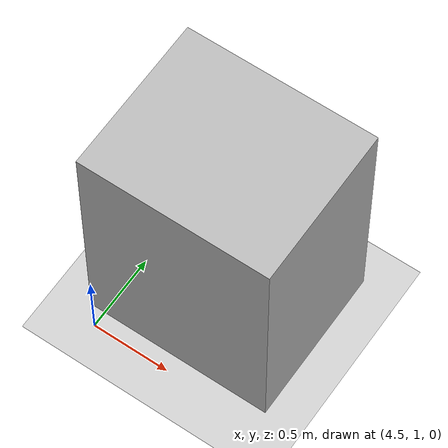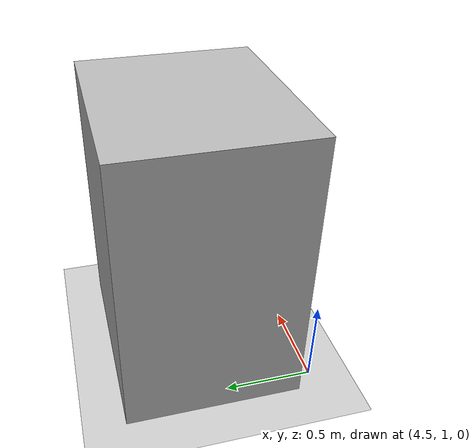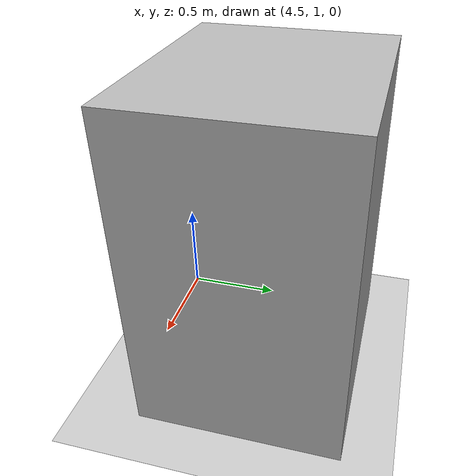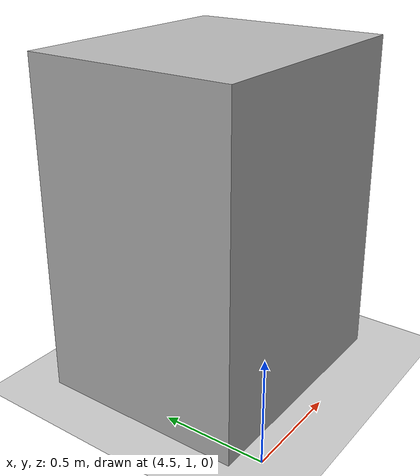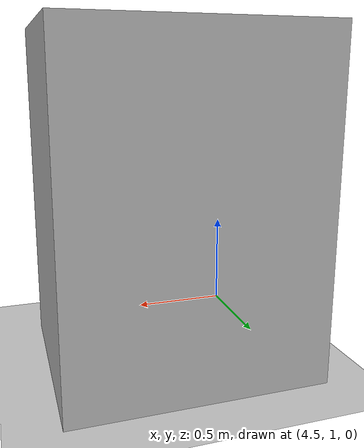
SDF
<?xml version="1.0"?>
<sdf version="1.9"><world name="mall_walkway"><plugin filename="gz-sim-physics-system" name="gz::sim::systems::Physics"/><plugin filename="gz-sim-scene-broadcaster-system" name="gz::sim::systems::SceneBroadcaster"/><include><uri>model://sun</uri></include><include><uri>model://ground_plane</uri></include><model name="kiosk"><static>true</static><pose>5 1.6 0.8 0 0 0</pose><link name="link"><collision name="c"><geometry><box><size>1.2 1.0 1.6</size></box></geometry></collision><visual name="v"><geometry><box><size>1.2 1.0 1.6</size></box></geometry></visual></link></model></world></sdf>
